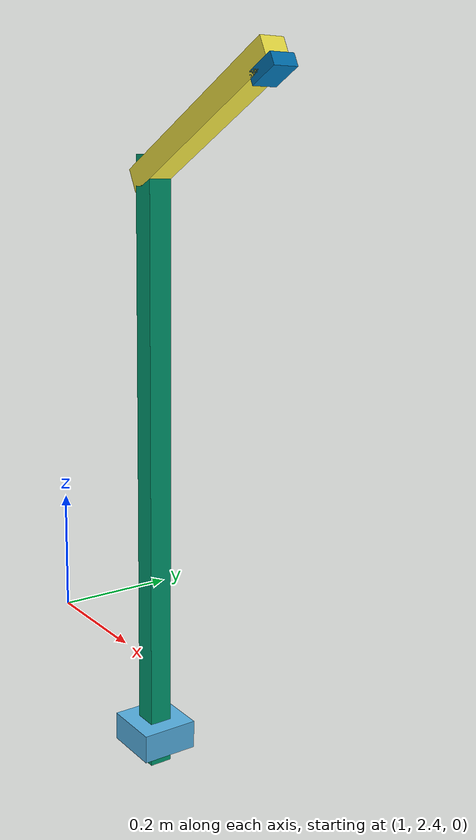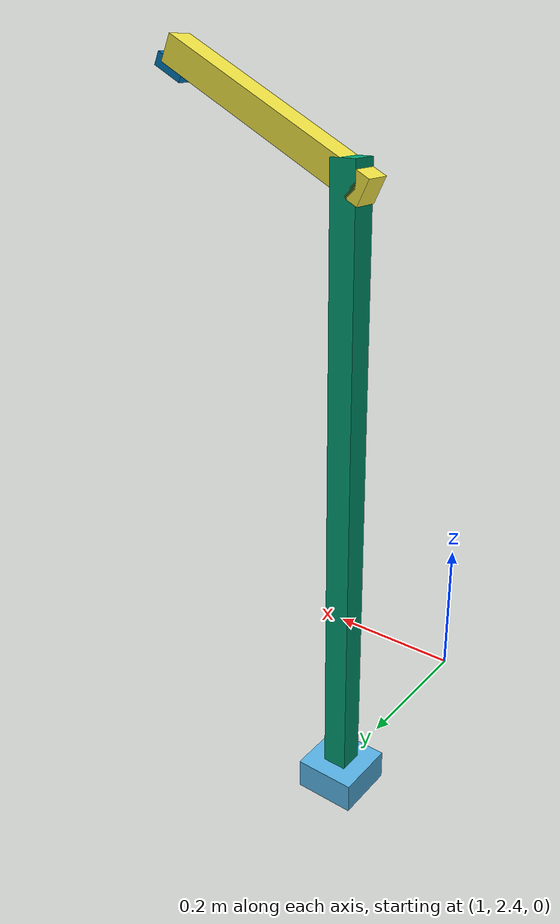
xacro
<?xml version="1.0"?>
<robot name="camera_robot" xmlns:xacro="http://ros.org/wiki/xacro" >

  <link name="link_base" >
  </link>

  <link name="plate_link" >
    <visual>
      <origin xyz="0 0 -0.22" rpy="0 0 0" />
      <geometry>
        <box size="0.1 0.1 0.05"/>
      </geometry>
    </visual>
    <collision>
      <origin xyz="0 0 0" rpy="0 0 0" />
      <geometry>
        <cylinder length="0.05" radius="0.15"/>
      </geometry>
    </collision>
    <inertial>
      <origin xyz="0 0 0" rpy="0 0 0" />
      <mass value="5"/>
     <inertia
        ixx="0.0001" ixy="1e-12" ixz="1e-12"
        iyy="0.0001" iyz="1e-12"
        izz="0.0001"/>
    </inertial>
  </link>

  <link name="haste1_link" >
    <visual>
      <origin xyz="0 0 0.2" rpy="0 0 0" />
      <geometry>
        <box size="0.04 0.04 1.05"/>
      </geometry>
    </visual>
    <collision>
      <origin xyz="0 0 0.05" rpy="0 0 0" />
      <geometry>
        <box size="0.04 0.04 0.70"/>
      </geometry>
    </collision>
    <inertial>
      <origin xyz="0 0 0.05" rpy="0 0 0" />
      <mass value="5"/>
     <inertia
        ixx="0.0001" ixy="1e-12" ixz="1e-12"
        iyy="0.0001" iyz="1e-12"
        izz="0.0001"/>
    </inertial>
  </link>

  <link name="haste2_link" >
    <visual>
      <origin xyz="0 0 0.15" rpy="0 0 0" />
      <geometry>
        <box size="0.04 0.04 0.37"/>
      </geometry>
    </visual>
    <collision>
      <origin xyz="0 0 0.15" rpy="0 0 0" />
      <geometry>
        <box size="0.04 0.04 0.25"/>
      </geometry>
    </collision>
    <inertial>
      <origin xyz="0 0 0.15" rpy="0 0 0" />
      <mass value="0.01"/>
     <inertia
        ixx="0.0001" ixy="1e-12" ixz="1e-12"
        iyy="0.0001" iyz="1e-12"
        izz="0.0001"/>
    </inertial>
  </link>

  <link name="sensor_link" >
    <visual>
      <origin xyz="0.02 0 0.32" rpy="0 0 0" />
      <geometry>
        <box size="0.02 0.04 0.05"/>
      </geometry>
    </visual>
    <collision>
      <origin xyz="0.40 0 0.45" rpy="0 0 0" />
      <geometry>
        <box size="0.02 0.04 0.05"/>
      </geometry>
    </collision>
    <inertial>
      <origin xyz="0.40 0 0.45" rpy="0 0 0" />
      <mass value="0.0001"/>
     <inertia
        ixx="0.0001" ixy="1e-12" ixz="1e-12"
        iyy="0.0001" iyz="1e-12"
        izz="0.0001"/>
    </inertial>
  </link>

  <joint name="plate_joint" type="fixed" >
    <axis xyz="1 1 1" />
    <origin xyz="1.13 2.5 0" />
    <parent link="link_base" />
    <child link="plate_link" />
  </joint>

  <joint name="haste1_joint" type="fixed" >
    <axis xyz="1 1 1" />
    <origin xyz="0 0 0.05" rpy="0 0 0"/>
    <parent link="plate_link" />
    <child link="haste1_link" />
  </joint>

  <joint name="haste2_joint" type="fixed" >
    <axis xyz="1 1 1" />
    <origin xyz="0 0 0.7" rpy="0 1.1 0"/>
    <parent link="haste1_link" />
    <child link="haste2_link" />
  </joint>

  <joint name="sensor_joint" type="fixed" >
    <axis xyz="1 1 1" />
    <origin xyz="0 0 0" rpy="0 0 0"/>
    <parent link="haste2_link" />
    <child link="sensor_link" />
  </joint>

  <gazebo reference="sensor_link">
    <sensor type="camera" name="camera1">
      <plugin name="camera_controller" filename="libgazebo_ros_camera.so">
        <alwaysOn>true</alwaysOn>
	<updateRate>0.0</updateRate>
	<cameraName>camera1</cameraName>
	<imageTopicName>image_raw</imageTopicName>
	<frameName>sensor_link</frameName>
	<hackBaseline>0.07</hackBaseline>
	<distortionK1>0.0</distortionK1>
	<distortionK2>0.0</distortionK2>
	<distortionK3>0.0</distortionK3>
	<distortionT1>0.0</distortionT1>
	<distortionT2>0.0</distortionT2>
      </plugin>
    </sensor>
  </gazebo>

</robot>
